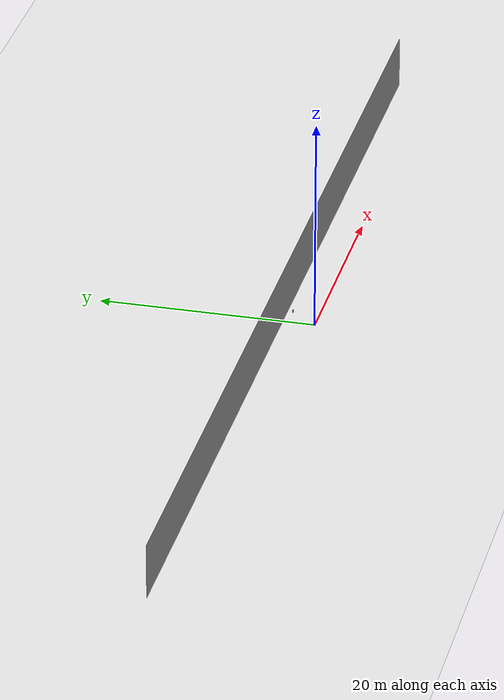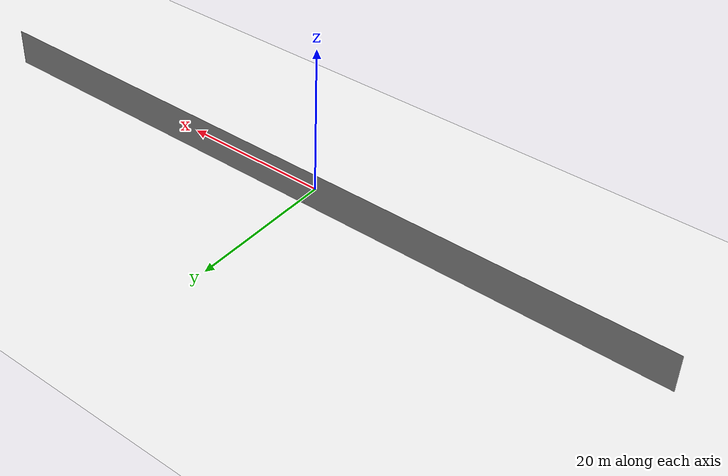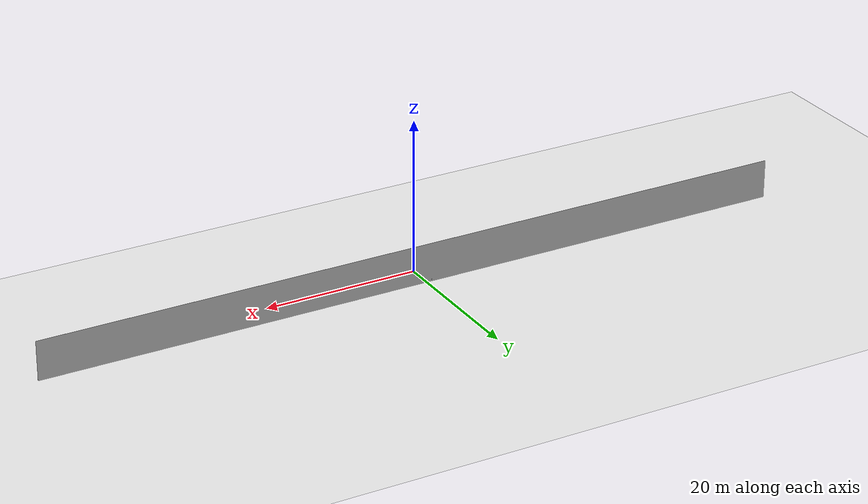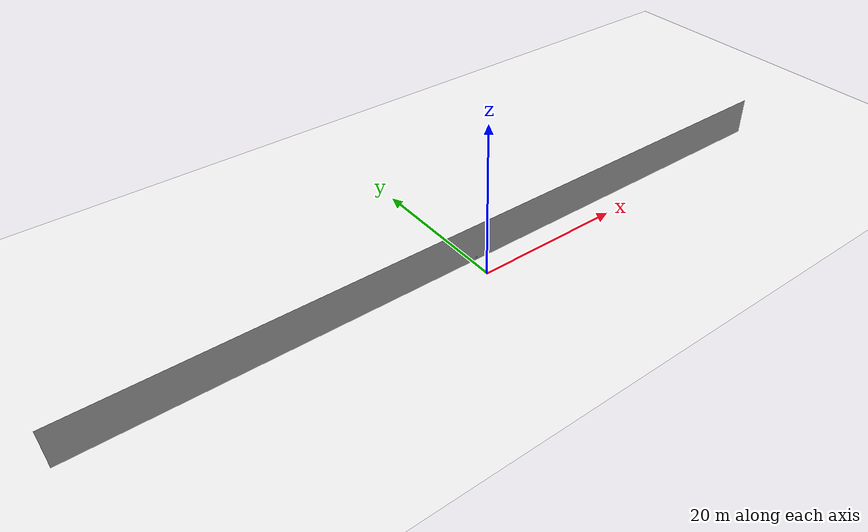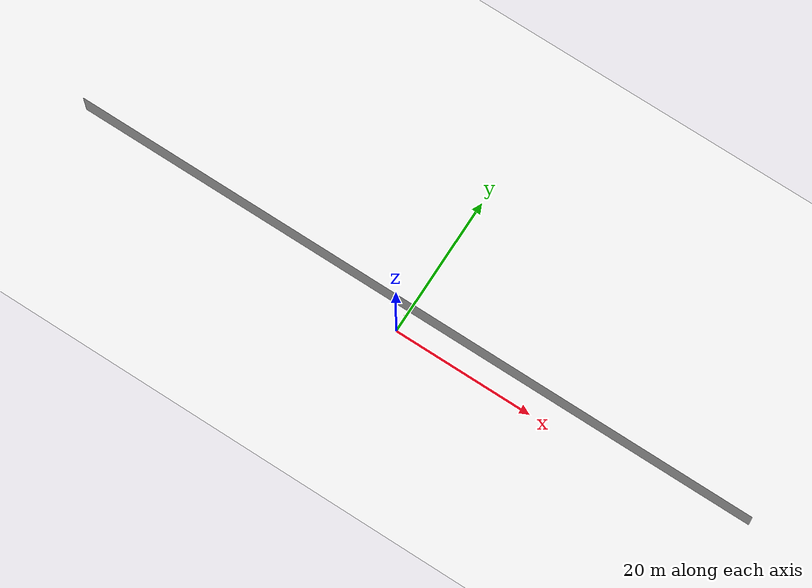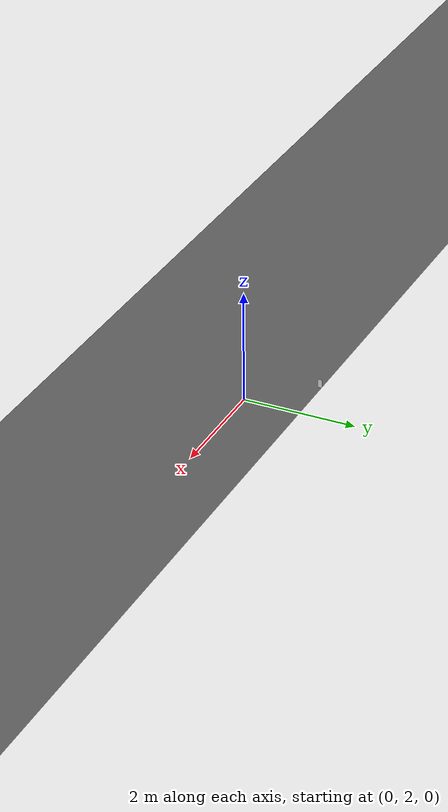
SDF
<sdf version="1.6">
 <world name="default">
  <scene><shadows>0</shadows><background>1 1 1 1</background><ambient>0.4 0.4 0.4 1</ambient></scene>
  <light name="sun" type="directional">
   <pose>0 -3 10 0 -0 0</pose>
   <diffuse>0.8 0.8 0.8 1</diffuse>
   <specular>0.1 0.1 0.1 1</specular>
   <attenuation>
    <range>1000</range>
    <constant>0.9</constant>
    <linear>0.01</linear>
    <quadratic>0.001</quadratic>
   </attenuation>
   <direction>-0.5 0.5 -1</direction>
  </light>
  <model name="ground_plane">
   <static>1</static>
   <link name="link">
    <collision name="collision">
     <geometry><plane><normal>0 0 1</normal><size>100 100</size></plane></geometry>
     <surface><friction><ode><mu>100</mu><mu2>50</mu2></ode></friction></surface>
    </collision>
    <visual name="visual">
     <cast_shadows>0</cast_shadows>
     <geometry><plane><normal>0 0 1</normal><size>100 100</size></plane></geometry>
     <material>
      <script><uri>file://media/materials/scripts/gazebo.material</uri><name>Gazebo/White</name></script>
     </material>
    </visual>
   </link>
  </model>
  <model name="box1">
   <pose>0 2 1.3 0 -0 0</pose>
   <link name="link">
    <collision name="collision"><geometry><sphere><radius>0.05</radius></sphere></geometry></collision>
    <visual name="visual">
     <geometry><sphere><radius>0.05</radius></sphere></geometry>
     <material>
      <script><name>Gazebo/Blue</name><uri>file://media/materials/scripts/gazebo.material</uri></script>
     </material>
    </visual>
    <inertial>
     <inertia><ixx>1</ixx><ixy>0</ixy><ixz>0</ixz><iyy>1</iyy><iyz>0</iyz><izz>1</izz></inertia>
     <mass>1</mass>
    </inertial>
   </link>
  </model>
  <model name="box2">
   <pose>-0.15 2 1.3 0 -0 0</pose>
   <link name="link">
    <collision name="collision"><geometry><sphere><radius>0.05</radius></sphere></geometry></collision>
    <visual name="visual">
     <geometry><sphere><radius>0.05</radius></sphere></geometry>
     <material>
      <script><name>Gazebo/Red</name><uri>file://media/materials/scripts/gazebo.material</uri></script>
     </material>
    </visual>
    <inertial>
     <inertia><ixx>1</ixx><ixy>0</ixy><ixz>0</ixz><iyy>1</iyy><iyz>0</iyz><izz>1</izz></inertia>
     <mass>1</mass>
    </inertial>
   </link>
  </model>
  <model name="box3">
   <pose>0 2 1.15 0 -0 0</pose>
   <link name="link">
    <collision name="collision"><geometry><sphere><radius>0.05</radius></sphere></geometry></collision>
    <visual name="visual">
     <geometry><sphere><radius>0.05</radius></sphere></geometry>
     <material>
      <script><name>Gazebo/Green</name><uri>file://media/materials/scripts/gazebo.material</uri></script>
     </material>
    </visual>
    <inertial>
     <inertia><ixx>1</ixx><ixy>0</ixy><ixz>0</ixz><iyy>1</iyy><iyz>0</iyz><izz>1</izz></inertia>
     <mass>1</mass>
    </inertial>
   </link>
  </model>
  <model name="box4">
   <pose>-0.15 2 1.15 0 -0 0</pose>
   <link name="link">
    <collision name="collision"><geometry><sphere><radius>0.05</radius></sphere></geometry></collision>
    <visual name="visual">
     <geometry><sphere><radius>0.05</radius></sphere></geometry>
     <material>
      <script><name>Gazebo/Yellow</name><uri>file://media/materials/scripts/gazebo.material</uri></script>
     </material>
    </visual>
    <inertial>
     <inertia><ixx>1</ixx><ixy>0</ixy><ixz>0</ixz><iyy>1</iyy><iyz>0</iyz><izz>1</izz></inertia>
     <mass>1</mass>
    </inertial>
   </link>
  </model>
  <gravity>0 0 0</gravity>
  <magnetic_field>6e-06 2.3e-05 -4.2e-05</magnetic_field>
  <atmosphere type="adiabatic"/>
  <physics name="default_physics" default="0" type="ode">
   <max_step_size>0.001</max_step_size>
   <real_time_factor>1</real_time_factor>
   <real_time_update_rate>1000</real_time_update_rate>
  </physics>
  <scene><ambient>0.4 0.4 0.4 1</ambient><background>0.7 0.7 0.7 1</background><shadows>1</shadows></scene>
  <spherical_coordinates>
   <surface_model>EARTH_WGS84</surface_model>
   <latitude_deg>0</latitude_deg>
   <longitude_deg>0</longitude_deg>
   <elevation>0</elevation>
   <heading_deg>0</heading_deg>
  </spherical_coordinates>
  <model name="box">
   <pose>0.5 3 0 0 -0 0</pose>
   <link name="link">
    <visual name="visual">
     <geometry><box><size>100 0.001 10</size></box></geometry>
     <material>
      <script>
       <uri>model://grey_wall/materials/scripts</uri>
       <uri>model://grey_wall/materials/textures</uri>
       <name>vrc/grey_wall</name>
      </script>
     </material>
    </visual>
    <inertial>
     <inertia><ixx>1</ixx><ixy>0</ixy><ixz>0</ixz><iyy>1</iyy><iyz>0</iyz><izz>1</izz></inertia>
     <mass>1</mass>
    </inertial>
   </link>
  </model>
  <model name="aruco_marker_0">
   <link name="link">
    <inertial>
     <mass>0.001</mass>
     <inertia>
      <ixx>3.75e-06</ixx>
      <ixy>0</ixy>
      <ixz>0</ixz>
      <iyy>1.875e-06</iyy>
      <iyz>0</iyz>
      <izz>1.875e-06</izz>
     </inertia>
    </inertial>
    <visual name="front_visual">
     <pose>5e-05 0 0 0 -0 0</pose>
     <geometry><box><size>0.0001 0.15 0.15</size></box></geometry>
     <material>
      <script>
       <uri>model://aruco_marker/materials/scripts</uri>
       <uri>model://aruco_marker/materials/textures</uri>
       <name>Marker</name>
      </script>
      <ambient>1 1 1 1</ambient>
      <diffuse>1 1 1 1</diffuse>
      <specular>0 0 0 1</specular>
      <emissive>0 0 0 1</emissive>
     </material>
    </visual>
    <visual name="rear_visual">
     <pose>-5e-05 0 0 0 -0 0</pose>
     <geometry><box><size>0.0001 0.15 0.15</size></box></geometry>
    </visual>
    <collision name="collision">
     <geometry><box><size>0.0001 0.15 0.15</size></box></geometry>
     <surface>
      <friction>
       <ode><mu>1</mu><mu2>1</mu2><fdir1>0 0 0</fdir1><slip1>0</slip1><slip2>0</slip2></ode>
       <torsional>
        <coefficient>1</coefficient>
        <patch_radius>0</patch_radius>
        <surface_radius>0</surface_radius>
        <use_patch_radius>1</use_patch_radius>
        <ode><slip>0</slip></ode>
       </torsional>
      </friction>
      <bounce><restitution_coefficient>0</restitution_coefficient><threshold>1e+06</threshold></bounce>
      <contact>
       <collide_without_contact>0</collide_without_contact>
       <collide_without_contact_bitmask>1</collide_without_contact_bitmask>
       <collide_bitmask>1</collide_bitmask>
       <ode>
        <soft_cfm>0</soft_cfm>
        <soft_erp>0.2</soft_erp>
        <kp>1e+13</kp>
        <kd>1</kd>
        <max_vel>0.01</max_vel>
        <min_depth>0</min_depth>
       </ode>
       <bullet>
        <split_impulse>1</split_impulse>
        <split_impulse_penetration_threshold>-0.01</split_impulse_penetration_threshold>
        <soft_cfm>0</soft_cfm>
        <soft_erp>0.2</soft_erp>
        <kp>1e+13</kp>
        <kd>1</kd>
       </bullet>
      </contact>
     </surface>
    </collision>
   </link>
   <static>1</static>
   <pose>-0.741232 2.99995 0.16878 0 -0.000987 0</pose>
  </model>
 </world>
</sdf>
